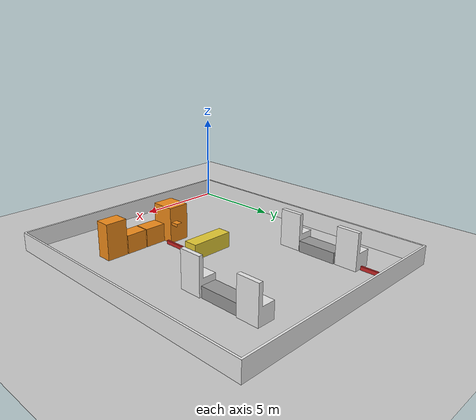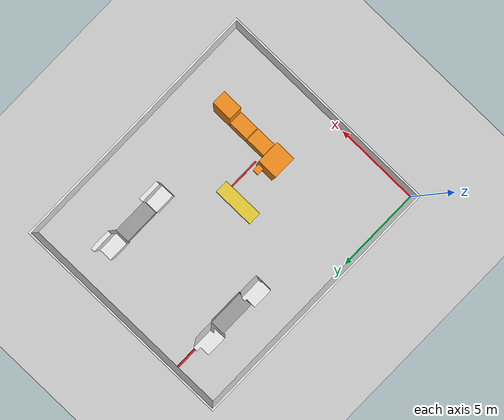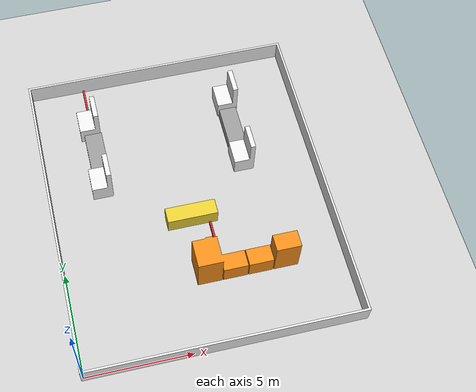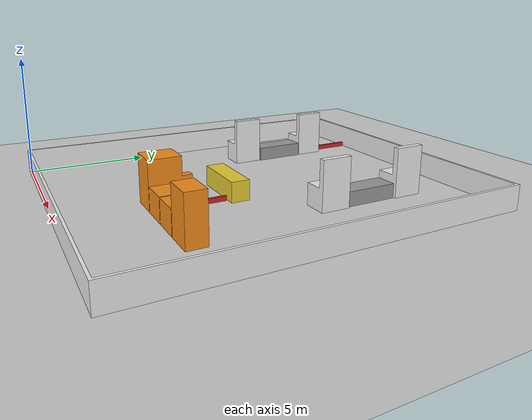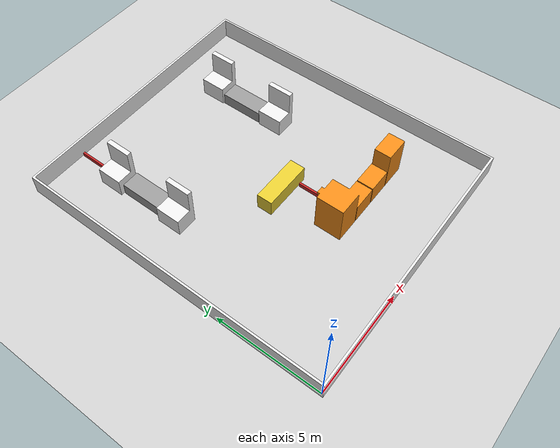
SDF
<?xml version="1.0" ?>
<sdf version="1.6">
    <world name="usecase_simplified">

        <!-- Load the sun -->
        <include>
            <uri>model://sun</uri>
        </include>

        <!-- Load ground plane -->
        <include>
            <uri>model://ground_plane</uri>
        </include>

        <!-- Load usecase -->
        <include>
            <uri>model://usecase_simplified</uri>
        </include>

        <!-- GUI -->
        <gui fullscreen='0'>
            <camera name='user_camera'>
                <pose frame=''>6.709306 -4.390283 19.288023 -0.000001 1.054001 1.567999</pose>
                <view_controller>orbit</view_controller>
                <projection_type>perspective</projection_type>
            </camera>
        </gui>

        <!-- SCENE -->
        <scene>
            <shadows>0</shadows>
        </scene>
    </world>
</sdf>

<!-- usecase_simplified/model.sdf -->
<sdf version='1.6'>
  <model name='usecase_simplified'>
    <static>1</static>
    <link name='usecase_simplified'>

      <!-- wall -->
      <collision name='wall'>
        <pose>0 0 0 0 0 0</pose>
        <geometry>
          <mesh>
            <uri>model://meshes/wall/wall.stl</uri>
            <scale>0.001 0.001 0.001</scale>
          </mesh>
        </geometry>
      </collision>
      <visual name='wall'>
        <pose>0 0 0 0 0 0</pose>
        <geometry>
          <mesh>
            <uri>model://meshes/wall/wall.stl</uri>
            <scale>0.001 0.001 0.001</scale>
          </mesh>
        </geometry>
        <material>
          <script>
            <uri>file://media/materials/scripts/gazebo.material</uri>
            <name>PR2/White</name>
          </script>
        </material>
      </visual>

      <!-- AP_simplified -->
      <collision name='AP_simplified'>
        <pose>5.9 3.2 0 0 0 0</pose>
        <geometry>
          <mesh>
            <uri>model://meshes/AP/AP_simplified.stl</uri>
            <scale>0.001 0.001 0.001</scale>
          </mesh>
        </geometry>
      </collision>
      <visual name='AP_simplified'>
        <pose>5.9 3.2 0 0 0 0</pose>
        <geometry>
          <mesh>
            <uri>model://meshes/AP/AP_simplified.stl</uri>
            <scale>0.001 0.001 0.001</scale>
          </mesh>
        </geometry>
        <material>
          <script>
            <uri>file://media/materials/scripts/gazebo.material</uri>
            <name>Gazebo/Orange</name>
          </script>
        </material>
      </visual>

      <!-- stock -->
      <collision name="stock">
        <pose>6.3775 6.625 0.415 0 0 0</pose>
        <geometry>
          <box>
            <size>2.41 0.75 0.83</size>
          </box>
        </geometry>
      </collision>
      <visual name="stock">
        <pose>6.3775 6.625 0.415 0 0 0</pose>
        <geometry>
          <box>
            <size>2.41 0.75 0.83</size>
          </box>
        </geometry>
        <material>
          <script>
            <uri>file://media/materials/scripts/gazebo.material</uri>
            <name>Gazebo/ZincYellow</name>
          </script>
        </material>
      </visual>

      <!-- Load MP1_simplified -->
      <collision name='MP1_simplified'>
        <pose>9.51 9.3 0 0 0 0</pose>
        <geometry>
          <mesh>
            <uri>model://meshes/MP/MP_simplified.stl</uri>
            <scale>0.001 0.001 0.001</scale>
          </mesh>
        </geometry>
      </collision>
      <visual name='MP1_simplified'>
        <pose>9.51 9.3 0 0 0 0</pose>
        <geometry>
          <mesh>
            <uri>model://meshes/MP/MP_simplified.stl</uri>
            <scale>0.001 0.001 0.001</scale>
          </mesh>
        </geometry>
        <material>
          <script>
            <uri>file://media/materials/scripts/gazebo.material</uri>
            <name>PR2/White</name>
          </script>
        </material>
      </visual>

      <!-- Load MP2_simplified -->
      <collision name='MP2_simplified'>
        <pose>9.51 12.7 0 0 0 0</pose>
        <geometry>
          <mesh>
            <uri>model://meshes/MP/MP_simplified.stl</uri>
            <scale>0.001 0.001 0.001</scale>
          </mesh>
        </geometry>
      </collision>
      <visual name='MP2_simplified'>
        <pose>9.51 12.7 0 0 0 0</pose>
        <geometry>
          <mesh>
            <uri>model://meshes/MP/MP_simplified.stl</uri>
            <scale>0.001 0.001 0.001</scale>
          </mesh>
        </geometry>
        <material>
          <script>
            <uri>file://media/materials/scripts/gazebo.material</uri>
            <name>PR2/White</name>
          </script>
        </material>
      </visual>

      <!-- Load MP3_simplified -->
      <collision name='MP3_simplified'>
        <pose>2.51 12.7 0 0 0 0</pose>
        <geometry>
          <mesh>
            <uri>model://meshes/MP/MP_simplified.stl</uri>
            <scale>0.001 0.001 0.001</scale>
          </mesh>
        </geometry>
      </collision>
      <visual name='MP3_simplified'>
        <pose>2.51 12.7 0 0 0 0</pose>
        <geometry>
          <mesh>
            <uri>model://meshes/MP/MP_simplified.stl</uri>
            <scale>0.001 0.001 0.001</scale>
          </mesh>
        </geometry>
        <material>
          <script>
            <uri>file://media/materials/scripts/gazebo.material</uri>
            <name>PR2/White</name>
          </script>
        </material>
      </visual>

      <!-- Load MP4_simplified -->
      <collision name='MP4_simplified'>
        <pose>2.51 9.3 0 0 0 0</pose>
        <geometry>
          <mesh>
            <uri>model://meshes/MP/MP_simplified.stl</uri>
            <scale>0.001 0.001 0.001</scale>
          </mesh>
        </geometry>
      </collision>
      <visual name='MP4_simplified'>
        <pose>2.51 9.3 0 0 0 0</pose>
        <geometry>
          <mesh>
            <uri>model://meshes/MP/MP_simplified.stl</uri>
            <scale>0.001 0.001 0.001</scale>
          </mesh>
        </geometry>
        <material>
          <script>
            <uri>file://media/materials/scripts/gazebo.material</uri>
            <name>PR2/White</name>
          </script>
        </material>
      </visual>

      <!-- stock12 -->
      <collision name="stock12">
        <pose>9.5 11.0 0.295 0 0 0</pose>
        <geometry>
          <box>
            <size>0.85 2.1 0.59</size>
          </box>
        </geometry>
      </collision>
      <visual name="stock12">
        <pose>9.5 11.0 0.295 0 0 0</pose>
        <geometry>
          <box>
            <size>0.85 2.1 0.59</size>
          </box>
        </geometry>
        <material>
          <script>
            <uri>file://media/materials/scripts/gazebo.material</uri>
            <name>Gazebo/Grey</name>
          </script>
        </material>
      </visual>

      <!-- stock34 -->
      <collision name="stock34">
        <pose>2.615 11 0.295 0 0 0</pose>
        <geometry>
          <box>
            <size>0.85 2.1 0.59</size>
          </box>
        </geometry>
      </collision>
      <visual name="stock34">
        <pose>2.615 11 0.295 0 0 0</pose>
        <geometry>
          <box>
            <size>0.85 2.1 0.59</size>
          </box>
        </geometry>
        <material>
          <script>
            <uri>file://media/materials/scripts/gazebo.material</uri>
            <name>Gazebo/Grey</name>
          </script>
        </material>
      </visual>

      <!-- obstacle_stock_AP -->
      <collision name="obstacle_stock_AP">
        <pose>7.2 5.3 0.1 0 0 0</pose>
        <geometry>
          <box>
            <size>0.1 1.8 0.2</size>
          </box>
        </geometry>
      </collision>
      <visual name="obstacle_stock_AP">
        <pose>7.2 5.3 0.1 0 0 0</pose>
        <geometry>
          <box>
            <size>0.1 1.8 0.2</size>
          </box>
        </geometry>
        <material>
          <script>
            <uri>file://media/materials/scripts/gazebo.material</uri>
            <name>Gazebo/Red</name>
          </script>
        </material>
      </visual>

      <!-- obstacle_MP3_wall -->
      <collision name="obstacle_MP3_wall">
        <pose>2.615 14.2 0.1 0 0 0</pose>
        <geometry>
          <box>
            <size>0.1 1.7 0.2</size>
          </box>
        </geometry>
      </collision>
      <visual name="obstacle_MP3_wall">
        <pose>2.615 14.2 0.1 0 0 0</pose>
        <geometry>
          <box>
            <size>0.1 1.7 0.2</size>
          </box>
        </geometry>
        <material>
          <script>
            <uri>file://media/materials/scripts/gazebo.material</uri>
            <name>Gazebo/Red</name>
          </script>
        </material>
      </visual>

    </link>
  </model>
</sdf>
